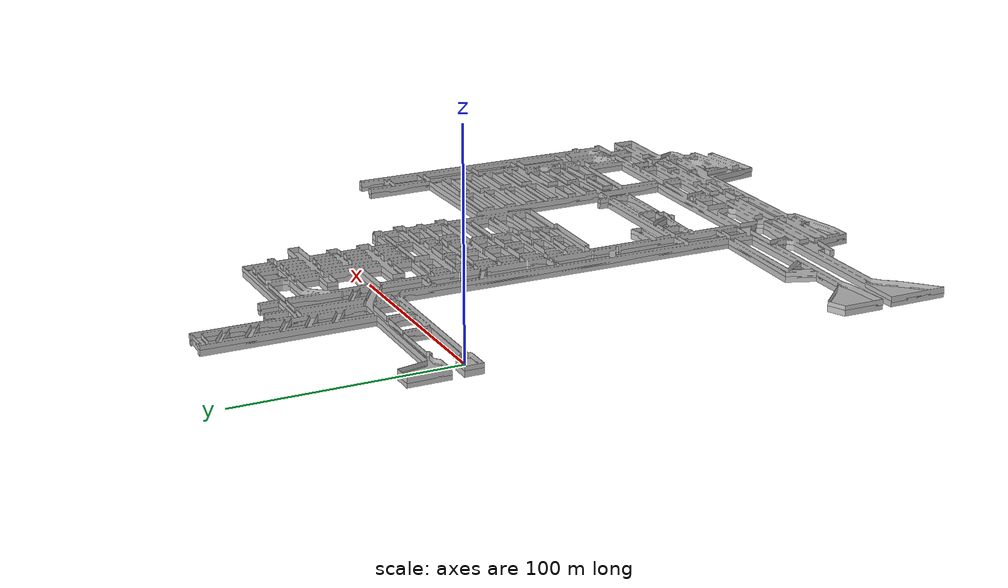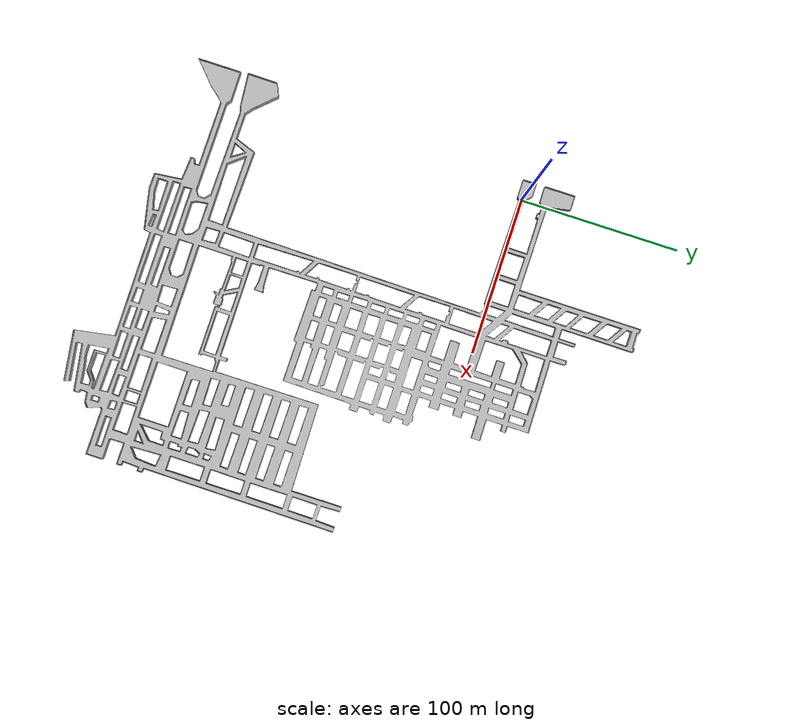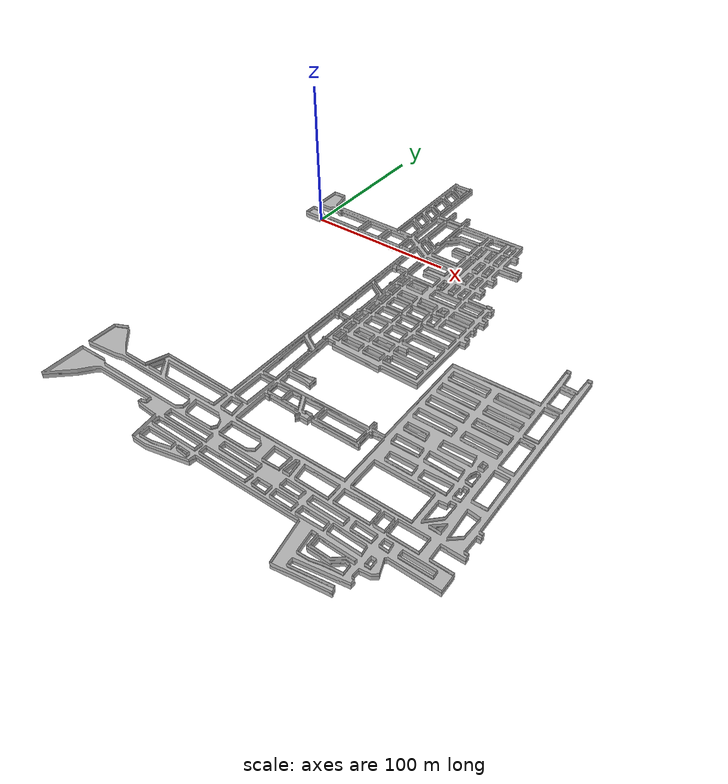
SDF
<?xml version="1.0" ?>
<sdf version='1.6'>
  <world name='map'>
    <physics name="1ms" type="ignored">
        <max_step_size>0.001</max_step_size>
        <real_time_factor>1.0</real_time_factor>
    </physics>
    <plugin filename="gz-sim-physics-system"
        name="gz::sim::systems::Physics">
    </plugin>
    <plugin filename="gz-sim-user-commands-system"
        name="gz::sim::systems::UserCommands">
    </plugin>
    <plugin filename="gz-sim-scene-broadcaster-system"
        name="gz::sim::systems::SceneBroadcaster">
    </plugin>
    <plugin filename="gz-sim-imu-system"
        name="gz::sim::systems::Imu">
    </plugin>
    <plugin filename="gz-sim-sensors-system"
        name="gz::sim::systems::Sensors">
        <render_engine>ogre2</render_engine>
    </plugin>

    <!-- GUI -->
    <gui fullscreen="0">

        <!-- 3D scene -->
        <plugin filename="GzScene3D" name="3D View">
            <gz-gui>
                <title>3D View</title>
                <property type="bool" key="showTitleBar">false</property>
                <property type="string" key="state">docked</property>
            </gz-gui>

            <engine>ogre2</engine>
            <scene>scene</scene>
            <ambient_light>0.4 0.4 0.4</ambient_light>
            <background_color>0.8 0.8 0.8</background_color>
        </plugin>

        <!-- World control -->
        <plugin filename="WorldControl" name="World control">
            <gz-gui>
                <title>World control</title>
                <property type="bool" key="showTitleBar">false</property>
                <property type="bool" key="resizable">false</property>
                <property type="double" key="height">72</property>
                <property type="double" key="width">121</property>
                <property type="double" key="z">1</property>

                <property type="string" key="state">floating</property>
                <anchors target="3D View">
                    <line own="left" target="left"/>
                    <line own="bottom" target="bottom"/>
                </anchors>
            </gz-gui>

            <play_pause>true</play_pause>
            <step>true</step>
            <start_paused>true</start_paused>
            <service>/world/cave/control</service>
            <stats_topic>/world/cave/stats</stats_topic>

        </plugin>

        <!-- World statistics -->
        <plugin filename="WorldStats" name="World stats">
            <gz-gui>
                <title>World stats</title>
                <property type="bool" key="showTitleBar">false</property>
                <property type="bool" key="resizable">false</property>
                <property type="double" key="height">110</property>
                <property type="double" key="width">290</property>
                <property type="double" key="z">1</property>

                <property type="string" key="state">floating</property>
                <anchors target="3D View">
                    <line own="right" target="right"/>
                    <line own="bottom" target="bottom"/>
                </anchors>
            </gz-gui>

            <sim_time>true</sim_time>
            <real_time>true</real_time>
            <real_time_factor>true</real_time_factor>
            <iterations>true</iterations>
            <topic>/world/cave/stats</topic>

        </plugin>

        <!-- Entity tree -->
        <plugin filename="EntityTree" name="Entity tree">
        </plugin>

        <!-- Component Inspector -->
        <plugin filename="ComponentInspector" name="Component Inspector">
        </plugin>
    </gui>

    <!-- Light -->
    <light type="directional" name="sun">
        <cast_shadows>true</cast_shadows>
        <pose>0 0 10 0 0 0</pose>
        <diffuse>0.8 0.8 0.8 1</diffuse>
        <specular>0.2 0.2 0.2 1</specular>
        <attenuation>
            <range>1000</range>
            <constant>0.9</constant>
            <linear>0.01</linear>
            <quadratic>0.001</quadratic>
        </attenuation>
        <direction>-0.5 0.1 -0.9</direction>
    </light>
    <model name='pittsburgh_mine'>
      <pose frame=''>-22 92.5 0 0 -0 0</pose>
      <static>1</static>
      <link name='link'>
        <collision name='collision'>
          <geometry>
            <mesh>
              <uri>model://pittsburgh_mine/pittsburgh_mine.dae</uri>
            </mesh>
          </geometry>
          <max_contacts>10</max_contacts>
        </collision>
        <visual name='visual'>
          <geometry>
            <mesh>
              <uri>model://pittsburgh_mine/pittsburgh_mine.dae</uri>
            </mesh>
          </geometry>
        </visual>
        <self_collide>0</self_collide>
        <kinematic>0</kinematic>
        <enable_wind>0</enable_wind>
      </link>
    </model>
     <model name='pittsburgh_mine2'>
      <pose frame=''>-22 92.5 2 0 -0 0</pose>
      <static>1</static>
      <link name='link'>
        <collision name='collision'>
          <geometry>
            <mesh>
              <uri>model://pittsburgh_mine/pittsburgh_mine.dae</uri>
            </mesh>
          </geometry>
          <max_contacts>10</max_contacts>
          <surface>
            <contact>
              <ode/>
            </contact>
            <bounce/>
            <friction>
              <torsional>
                <ode/>
              </torsional>
              <ode/>
            </friction>
          </surface>
        </collision>
        <visual name='visual'>
          <geometry>
            <mesh>
              <uri>model://pittsburgh_mine/pittsburgh_mine.dae</uri>
            </mesh>
          </geometry>
        </visual>
        <self_collide>0</self_collide>
        <kinematic>0</kinematic>
        <enable_wind>0</enable_wind>
      </link>
    </model>
  </world>
</sdf>
